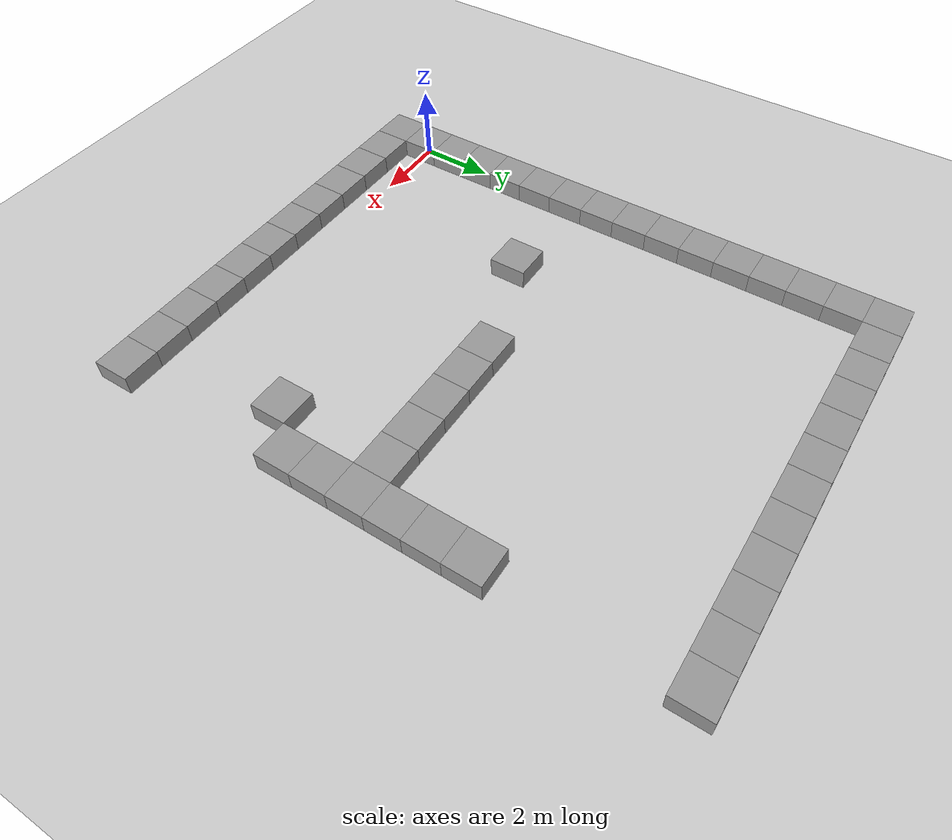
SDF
<sdf version="1.4">
 <world name="default">
  <model name="ground_plane">
   <static>1</static>
   <link name="link">
    <collision name="collision">
     <geometry><plane><normal>0 0 1</normal><size>100 100</size></plane></geometry>
     <surface><friction><ode><mu>100</mu><mu2>50</mu2></ode></friction></surface>
    </collision>
    <visual name="visual">
     <cast_shadows>0</cast_shadows>
     <geometry><plane><normal>0 0 1</normal><size>100 100</size></plane></geometry>
     <material>
      <script><uri>file://media/materials/scripts/gazebo.material</uri><name>Gazebo/Grey</name></script>
     </material>
    </visual>
    <velocity_decay><linear>0</linear><angular>0</angular></velocity_decay>
   </link>
  </model>
  <model name="unit_box_1">
   <pose>0 -1 0 0 -0 0</pose>
   <link name="link">
    <inertial>
     <mass>1</mass>
     <inertia><ixx>1</ixx><ixy>0</ixy><ixz>0</ixz><iyy>1</iyy><iyz>0</iyz><izz>1</izz></inertia>
    </inertial>
    <collision name="collision"><geometry><box><size>1 1 1</size></box></geometry></collision>
    <visual name="visual">
     <geometry><box><size>1 1 1</size></box></geometry>
     <material>
      <script><uri>file://media/materials/scripts/gazebo.material</uri><name>Gazebo/Grey</name></script>
     </material>
    </visual>
    <velocity_decay><linear>0</linear><angular>0</angular></velocity_decay>
   </link>
   <static>1</static>
  </model>
  <model name="unit_box_2">
   <pose>1 -1 0 0 -0 0</pose>
   <link name="link">
    <inertial>
     <mass>1</mass>
     <inertia><ixx>1</ixx><ixy>0</ixy><ixz>0</ixz><iyy>1</iyy><iyz>0</iyz><izz>1</izz></inertia>
    </inertial>
    <collision name="collision"><geometry><box><size>1 1 1</size></box></geometry></collision>
    <visual name="visual">
     <geometry><box><size>1 1 1</size></box></geometry>
     <material>
      <script><uri>file://media/materials/scripts/gazebo.material</uri><name>Gazebo/Grey</name></script>
     </material>
    </visual>
    <velocity_decay><linear>0</linear><angular>0</angular></velocity_decay>
   </link>
   <static>1</static>
  </model>
  <model name="unit_box_3">
   <pose>2 -1 0 0 -0 0</pose>
   <link name="link">
    <inertial>
     <mass>1</mass>
     <inertia><ixx>1</ixx><ixy>0</ixy><ixz>0</ixz><iyy>1</iyy><iyz>0</iyz><izz>1</izz></inertia>
    </inertial>
    <collision name="collision"><geometry><box><size>1 1 1</size></box></geometry></collision>
    <visual name="visual">
     <geometry><box><size>1 1 1</size></box></geometry>
     <material>
      <script><uri>file://media/materials/scripts/gazebo.material</uri><name>Gazebo/Grey</name></script>
     </material>
    </visual>
    <velocity_decay><linear>0</linear><angular>0</angular></velocity_decay>
   </link>
   <static>1</static>
  </model>
  <model name="unit_box_4">
   <pose>3 -1 0 0 -0 0</pose>
   <link name="link">
    <inertial>
     <mass>1</mass>
     <inertia><ixx>1</ixx><ixy>0</ixy><ixz>0</ixz><iyy>1</iyy><iyz>0</iyz><izz>1</izz></inertia>
    </inertial>
    <collision name="collision"><geometry><box><size>1 1 1</size></box></geometry></collision>
    <visual name="visual">
     <geometry><box><size>1 1 1</size></box></geometry>
     <material>
      <script><uri>file://media/materials/scripts/gazebo.material</uri><name>Gazebo/Grey</name></script>
     </material>
    </visual>
    <velocity_decay><linear>0</linear><angular>0</angular></velocity_decay>
   </link>
   <static>1</static>
  </model>
  <model name="unit_box_5">
   <pose>4 -1 0 0 -0 0</pose>
   <link name="link">
    <inertial>
     <mass>1</mass>
     <inertia><ixx>1</ixx><ixy>0</ixy><ixz>0</ixz><iyy>1</iyy><iyz>0</iyz><izz>1</izz></inertia>
    </inertial>
    <collision name="collision"><geometry><box><size>1 1 1</size></box></geometry></collision>
    <visual name="visual">
     <geometry><box><size>1 1 1</size></box></geometry>
     <material>
      <script><uri>file://media/materials/scripts/gazebo.material</uri><name>Gazebo/Grey</name></script>
     </material>
    </visual>
    <velocity_decay><linear>0</linear><angular>0</angular></velocity_decay>
   </link>
   <static>1</static>
  </model>
  <model name="unit_box_6">
   <pose>5 -1 0 0 -0 0</pose>
   <link name="link">
    <inertial>
     <mass>1</mass>
     <inertia><ixx>1</ixx><ixy>0</ixy><ixz>0</ixz><iyy>1</iyy><iyz>0</iyz><izz>1</izz></inertia>
    </inertial>
    <collision name="collision"><geometry><box><size>1 1 1</size></box></geometry></collision>
    <visual name="visual">
     <geometry><box><size>1 1 1</size></box></geometry>
     <material>
      <script><uri>file://media/materials/scripts/gazebo.material</uri><name>Gazebo/Grey</name></script>
     </material>
    </visual>
    <velocity_decay><linear>0</linear><angular>0</angular></velocity_decay>
   </link>
   <static>1</static>
  </model>
  <model name="unit_box_7">
   <pose>6 -1 0 0 -0 0</pose>
   <link name="link">
    <inertial>
     <mass>1</mass>
     <inertia><ixx>1</ixx><ixy>0</ixy><ixz>0</ixz><iyy>1</iyy><iyz>0</iyz><izz>1</izz></inertia>
    </inertial>
    <collision name="collision"><geometry><box><size>1 1 1</size></box></geometry></collision>
    <visual name="visual">
     <geometry><box><size>1 1 1</size></box></geometry>
     <material>
      <script><uri>file://media/materials/scripts/gazebo.material</uri><name>Gazebo/Grey</name></script>
     </material>
    </visual>
    <velocity_decay><linear>0</linear><angular>0</angular></velocity_decay>
   </link>
   <static>1</static>
  </model>
  <model name="unit_box_8">
   <pose>7 -1 0 0 -0 0</pose>
   <link name="link">
    <inertial>
     <mass>1</mass>
     <inertia><ixx>1</ixx><ixy>0</ixy><ixz>0</ixz><iyy>1</iyy><iyz>0</iyz><izz>1</izz></inertia>
    </inertial>
    <collision name="collision"><geometry><box><size>1 1 1</size></box></geometry></collision>
    <visual name="visual">
     <geometry><box><size>1 1 1</size></box></geometry>
     <material>
      <script><uri>file://media/materials/scripts/gazebo.material</uri><name>Gazebo/Grey</name></script>
     </material>
    </visual>
    <velocity_decay><linear>0</linear><angular>0</angular></velocity_decay>
   </link>
   <static>1</static>
  </model>
  <model name="unit_box_9">
   <pose>8 -1 0 0 -0 0</pose>
   <link name="link">
    <inertial>
     <mass>1</mass>
     <inertia><ixx>1</ixx><ixy>0</ixy><ixz>0</ixz><iyy>1</iyy><iyz>0</iyz><izz>1</izz></inertia>
    </inertial>
    <collision name="collision"><geometry><box><size>1 1 1</size></box></geometry></collision>
    <visual name="visual">
     <geometry><box><size>1 1 1</size></box></geometry>
     <material>
      <script><uri>file://media/materials/scripts/gazebo.material</uri><name>Gazebo/Grey</name></script>
     </material>
    </visual>
    <velocity_decay><linear>0</linear><angular>0</angular></velocity_decay>
   </link>
   <static>1</static>
  </model>
  <model name="unit_box_10">
   <pose>9 -1 0 0 -0 0</pose>
   <link name="link">
    <inertial>
     <mass>1</mass>
     <inertia><ixx>1</ixx><ixy>0</ixy><ixz>0</ixz><iyy>1</iyy><iyz>0</iyz><izz>1</izz></inertia>
    </inertial>
    <collision name="collision"><geometry><box><size>1 1 1</size></box></geometry></collision>
    <visual name="visual">
     <geometry><box><size>1 1 1</size></box></geometry>
     <material>
      <script><uri>file://media/materials/scripts/gazebo.material</uri><name>Gazebo/Grey</name></script>
     </material>
    </visual>
    <velocity_decay><linear>0</linear><angular>0</angular></velocity_decay>
   </link>
   <static>1</static>
  </model>
  <model name="unit_box_11">
   <pose>10 -1 0 0 -0 0</pose>
   <link name="link">
    <inertial>
     <mass>1</mass>
     <inertia><ixx>1</ixx><ixy>0</ixy><ixz>0</ixz><iyy>1</iyy><iyz>0</iyz><izz>1</izz></inertia>
    </inertial>
    <collision name="collision"><geometry><box><size>1 1 1</size></box></geometry></collision>
    <visual name="visual">
     <geometry><box><size>1 1 1</size></box></geometry>
     <material>
      <script><uri>file://media/materials/scripts/gazebo.material</uri><name>Gazebo/Grey</name></script>
     </material>
    </visual>
    <velocity_decay><linear>0</linear><angular>0</angular></velocity_decay>
   </link>
   <static>1</static>
  </model>
  <model name="unit_box_12">
   <pose>11 -1 0 0 -0 0</pose>
   <link name="link">
    <inertial>
     <mass>1</mass>
     <inertia><ixx>1</ixx><ixy>0</ixy><ixz>0</ixz><iyy>1</iyy><iyz>0</iyz><izz>1</izz></inertia>
    </inertial>
    <collision name="collision"><geometry><box><size>1 1 1</size></box></geometry></collision>
    <visual name="visual">
     <geometry><box><size>1 1 1</size></box></geometry>
     <material>
      <script><uri>file://media/materials/scripts/gazebo.material</uri><name>Gazebo/Grey</name></script>
     </material>
    </visual>
    <velocity_decay><linear>0</linear><angular>0</angular></velocity_decay>
   </link>
   <static>1</static>
  </model>
  <model name="unit_box_13">
   <link name="link">
    <inertial>
     <mass>1</mass>
     <inertia><ixx>1</ixx><ixy>0</ixy><ixz>0</ixz><iyy>1</iyy><iyz>0</iyz><izz>1</izz></inertia>
    </inertial>
    <collision name="collision"><geometry><box><size>1 1 1</size></box></geometry></collision>
    <visual name="visual">
     <geometry><box><size>1 1 1</size></box></geometry>
     <material>
      <script><uri>file://media/materials/scripts/gazebo.material</uri><name>Gazebo/Grey</name></script>
     </material>
    </visual>
    <velocity_decay><linear>0</linear><angular>0</angular></velocity_decay>
   </link>
   <static>1</static>
  </model>
  <model name="unit_box_14">
   <pose>0 1 0 0 -0 0</pose>
   <link name="link">
    <inertial>
     <mass>1</mass>
     <inertia><ixx>1</ixx><ixy>0</ixy><ixz>0</ixz><iyy>1</iyy><iyz>0</iyz><izz>1</izz></inertia>
    </inertial>
    <collision name="collision"><geometry><box><size>1 1 1</size></box></geometry></collision>
    <visual name="visual">
     <geometry><box><size>1 1 1</size></box></geometry>
     <material>
      <script><uri>file://media/materials/scripts/gazebo.material</uri><name>Gazebo/Grey</name></script>
     </material>
    </visual>
    <velocity_decay><linear>0</linear><angular>0</angular></velocity_decay>
   </link>
   <static>1</static>
  </model>
  <model name="unit_box_15">
   <pose>0 2 0 0 -0 0</pose>
   <link name="link">
    <inertial>
     <mass>1</mass>
     <inertia><ixx>1</ixx><ixy>0</ixy><ixz>0</ixz><iyy>1</iyy><iyz>0</iyz><izz>1</izz></inertia>
    </inertial>
    <collision name="collision"><geometry><box><size>1 1 1</size></box></geometry></collision>
    <visual name="visual">
     <geometry><box><size>1 1 1</size></box></geometry>
     <material>
      <script><uri>file://media/materials/scripts/gazebo.material</uri><name>Gazebo/Grey</name></script>
     </material>
    </visual>
    <velocity_decay><linear>0</linear><angular>0</angular></velocity_decay>
   </link>
   <static>1</static>
  </model>
  <model name="unit_box_16">
   <pose>0 3 0 0 -0 0</pose>
   <link name="link">
    <inertial>
     <mass>1</mass>
     <inertia><ixx>1</ixx><ixy>0</ixy><ixz>0</ixz><iyy>1</iyy><iyz>0</iyz><izz>1</izz></inertia>
    </inertial>
    <collision name="collision"><geometry><box><size>1 1 1</size></box></geometry></collision>
    <visual name="visual">
     <geometry><box><size>1 1 1</size></box></geometry>
     <material>
      <script><uri>file://media/materials/scripts/gazebo.material</uri><name>Gazebo/Grey</name></script>
     </material>
    </visual>
    <velocity_decay><linear>0</linear><angular>0</angular></velocity_decay>
   </link>
   <static>1</static>
  </model>
  <model name="unit_box_17">
   <pose>0 4 0 0 -0 0</pose>
   <link name="link">
    <inertial>
     <mass>1</mass>
     <inertia><ixx>1</ixx><ixy>0</ixy><ixz>0</ixz><iyy>1</iyy><iyz>0</iyz><izz>1</izz></inertia>
    </inertial>
    <collision name="collision"><geometry><box><size>1 1 1</size></box></geometry></collision>
    <visual name="visual">
     <geometry><box><size>1 1 1</size></box></geometry>
     <material>
      <script><uri>file://media/materials/scripts/gazebo.material</uri><name>Gazebo/Grey</name></script>
     </material>
    </visual>
    <velocity_decay><linear>0</linear><angular>0</angular></velocity_decay>
   </link>
   <static>1</static>
  </model>
  <model name="unit_box_18">
   <pose>0 5 0 0 -0 0</pose>
   <link name="link">
    <inertial>
     <mass>1</mass>
     <inertia><ixx>1</ixx><ixy>0</ixy><ixz>0</ixz><iyy>1</iyy><iyz>0</iyz><izz>1</izz></inertia>
    </inertial>
    <collision name="collision"><geometry><box><size>1 1 1</size></box></geometry></collision>
    <visual name="visual">
     <geometry><box><size>1 1 1</size></box></geometry>
     <material>
      <script><uri>file://media/materials/scripts/gazebo.material</uri><name>Gazebo/Grey</name></script>
     </material>
    </visual>
    <velocity_decay><linear>0</linear><angular>0</angular></velocity_decay>
   </link>
   <static>1</static>
  </model>
  <model name="unit_box_19">
   <pose>0 6 0 0 -0 0</pose>
   <link name="link">
    <inertial>
     <mass>1</mass>
     <inertia><ixx>1</ixx><ixy>0</ixy><ixz>0</ixz><iyy>1</iyy><iyz>0</iyz><izz>1</izz></inertia>
    </inertial>
    <collision name="collision"><geometry><box><size>1 1 1</size></box></geometry></collision>
    <visual name="visual">
     <geometry><box><size>1 1 1</size></box></geometry>
     <material>
      <script><uri>file://media/materials/scripts/gazebo.material</uri><name>Gazebo/Grey</name></script>
     </material>
    </visual>
    <velocity_decay><linear>0</linear><angular>0</angular></velocity_decay>
   </link>
   <static>1</static>
  </model>
  <model name="unit_box_20">
   <pose>0 7 0 0 -0 0</pose>
   <link name="link">
    <inertial>
     <mass>1</mass>
     <inertia><ixx>1</ixx><ixy>0</ixy><ixz>0</ixz><iyy>1</iyy><iyz>0</iyz><izz>1</izz></inertia>
    </inertial>
    <collision name="collision"><geometry><box><size>1 1 1</size></box></geometry></collision>
    <visual name="visual">
     <geometry><box><size>1 1 1</size></box></geometry>
     <material>
      <script><uri>file://media/materials/scripts/gazebo.material</uri><name>Gazebo/Grey</name></script>
     </material>
    </visual>
    <velocity_decay><linear>0</linear><angular>0</angular></velocity_decay>
   </link>
   <static>1</static>
  </model>
  <model name="unit_box_21">
   <pose>0 8 0 0 -0 0</pose>
   <link name="link">
    <inertial>
     <mass>1</mass>
     <inertia><ixx>1</ixx><ixy>0</ixy><ixz>0</ixz><iyy>1</iyy><iyz>0</iyz><izz>1</izz></inertia>
    </inertial>
    <collision name="collision"><geometry><box><size>1 1 1</size></box></geometry></collision>
    <visual name="visual">
     <geometry><box><size>1 1 1</size></box></geometry>
     <material>
      <script><uri>file://media/materials/scripts/gazebo.material</uri><name>Gazebo/Grey</name></script>
     </material>
    </visual>
    <velocity_decay><linear>0</linear><angular>0</angular></velocity_decay>
   </link>
   <static>1</static>
  </model>
  <model name="unit_box_22">
   <pose>0 9 0 0 -0 0</pose>
   <link name="link">
    <inertial>
     <mass>1</mass>
     <inertia><ixx>1</ixx><ixy>0</ixy><ixz>0</ixz><iyy>1</iyy><iyz>0</iyz><izz>1</izz></inertia>
    </inertial>
    <collision name="collision"><geometry><box><size>1 1 1</size></box></geometry></collision>
    <visual name="visual">
     <geometry><box><size>1 1 1</size></box></geometry>
     <material>
      <script><uri>file://media/materials/scripts/gazebo.material</uri><name>Gazebo/Grey</name></script>
     </material>
    </visual>
    <velocity_decay><linear>0</linear><angular>0</angular></velocity_decay>
   </link>
   <static>1</static>
  </model>
  <model name="unit_box_23">
   <pose>0 10 0 0 -0 0</pose>
   <link name="link">
    <inertial>
     <mass>1</mass>
     <inertia><ixx>1</ixx><ixy>0</ixy><ixz>0</ixz><iyy>1</iyy><iyz>0</iyz><izz>1</izz></inertia>
    </inertial>
    <collision name="collision"><geometry><box><size>1 1 1</size></box></geometry></collision>
    <visual name="visual">
     <geometry><box><size>1 1 1</size></box></geometry>
     <material>
      <script><uri>file://media/materials/scripts/gazebo.material</uri><name>Gazebo/Grey</name></script>
     </material>
    </visual>
    <velocity_decay><linear>0</linear><angular>0</angular></velocity_decay>
   </link>
   <static>1</static>
  </model>
  <model name="unit_box_24">
   <pose>0 11 0 0 -0 0</pose>
   <link name="link">
    <inertial>
     <mass>1</mass>
     <inertia><ixx>1</ixx><ixy>0</ixy><ixz>0</ixz><iyy>1</iyy><iyz>0</iyz><izz>1</izz></inertia>
    </inertial>
    <collision name="collision"><geometry><box><size>1 1 1</size></box></geometry></collision>
    <visual name="visual">
     <geometry><box><size>1 1 1</size></box></geometry>
     <material>
      <script><uri>file://media/materials/scripts/gazebo.material</uri><name>Gazebo/Grey</name></script>
     </material>
    </visual>
    <velocity_decay><linear>0</linear><angular>0</angular></velocity_decay>
   </link>
   <static>1</static>
  </model>
  <model name="unit_box_25">
   <pose>0 12 0 0 -0 0</pose>
   <link name="link">
    <inertial>
     <mass>1</mass>
     <inertia><ixx>1</ixx><ixy>0</ixy><ixz>0</ixz><iyy>1</iyy><iyz>0</iyz><izz>1</izz></inertia>
    </inertial>
    <collision name="collision"><geometry><box><size>1 1 1</size></box></geometry></collision>
    <visual name="visual">
     <geometry><box><size>1 1 1</size></box></geometry>
     <material>
      <script><uri>file://media/materials/scripts/gazebo.material</uri><name>Gazebo/Grey</name></script>
     </material>
    </visual>
    <velocity_decay><linear>0</linear><angular>0</angular></velocity_decay>
   </link>
   <static>1</static>
  </model>
  <model name="unit_box_26">
   <pose>0 13 0 0 -0 0</pose>
   <link name="link">
    <inertial>
     <mass>1</mass>
     <inertia><ixx>1</ixx><ixy>0</ixy><ixz>0</ixz><iyy>1</iyy><iyz>0</iyz><izz>1</izz></inertia>
    </inertial>
    <collision name="collision"><geometry><box><size>1 1 1</size></box></geometry></collision>
    <visual name="visual">
     <geometry><box><size>1 1 1</size></box></geometry>
     <material>
      <script><uri>file://media/materials/scripts/gazebo.material</uri><name>Gazebo/Grey</name></script>
     </material>
    </visual>
    <velocity_decay><linear>0</linear><angular>0</angular></velocity_decay>
   </link>
   <static>1</static>
  </model>
  <model name="unit_box_27">
   <pose>0 14 0 0 -0 0</pose>
   <link name="link">
    <inertial>
     <mass>1</mass>
     <inertia><ixx>1</ixx><ixy>0</ixy><ixz>0</ixz><iyy>1</iyy><iyz>0</iyz><izz>1</izz></inertia>
    </inertial>
    <collision name="collision"><geometry><box><size>1 1 1</size></box></geometry></collision>
    <visual name="visual">
     <geometry><box><size>1 1 1</size></box></geometry>
     <material>
      <script><uri>file://media/materials/scripts/gazebo.material</uri><name>Gazebo/Grey</name></script>
     </material>
    </visual>
    <velocity_decay><linear>0</linear><angular>0</angular></velocity_decay>
   </link>
   <static>1</static>
  </model>
  <model name="unit_box_28">
   <pose>1 14 0 0 -0 0</pose>
   <link name="link">
    <inertial>
     <mass>1</mass>
     <inertia><ixx>1</ixx><ixy>0</ixy><ixz>0</ixz><iyy>1</iyy><iyz>0</iyz><izz>1</izz></inertia>
    </inertial>
    <collision name="collision"><geometry><box><size>1 1 1</size></box></geometry></collision>
    <visual name="visual">
     <geometry><box><size>1 1 1</size></box></geometry>
     <material>
      <script><uri>file://media/materials/scripts/gazebo.material</uri><name>Gazebo/Grey</name></script>
     </material>
    </visual>
    <velocity_decay><linear>0</linear><angular>0</angular></velocity_decay>
   </link>
   <static>1</static>
  </model>
  <model name="unit_box_29">
   <pose>2 14 0 0 -0 0</pose>
   <link name="link">
    <inertial>
     <mass>1</mass>
     <inertia><ixx>1</ixx><ixy>0</ixy><ixz>0</ixz><iyy>1</iyy><iyz>0</iyz><izz>1</izz></inertia>
    </inertial>
    <collision name="collision"><geometry><box><size>1 1 1</size></box></geometry></collision>
    <visual name="visual">
     <geometry><box><size>1 1 1</size></box></geometry>
     <material>
      <script><uri>file://media/materials/scripts/gazebo.material</uri><name>Gazebo/Grey</name></script>
     </material>
    </visual>
    <velocity_decay><linear>0</linear><angular>0</angular></velocity_decay>
   </link>
   <static>1</static>
  </model>
  <model name="unit_box_30">
   <pose>3 14 0 0 -0 0</pose>
   <link name="link">
    <inertial>
     <mass>1</mass>
     <inertia><ixx>1</ixx><ixy>0</ixy><ixz>0</ixz><iyy>1</iyy><iyz>0</iyz><izz>1</izz></inertia>
    </inertial>
    <collision name="collision"><geometry><box><size>1 1 1</size></box></geometry></collision>
    <visual name="visual">
     <geometry><box><size>1 1 1</size></box></geometry>
     <material>
      <script><uri>file://media/materials/scripts/gazebo.material</uri><name>Gazebo/Grey</name></script>
     </material>
    </visual>
    <velocity_decay><linear>0</linear><angular>0</angular></velocity_decay>
   </link>
   <static>1</static>
  </model>
  <model name="unit_box_31">
   <pose>4 14 0 0 -0 0</pose>
   <link name="link">
    <inertial>
     <mass>1</mass>
     <inertia><ixx>1</ixx><ixy>0</ixy><ixz>0</ixz><iyy>1</iyy><iyz>0</iyz><izz>1</izz></inertia>
    </inertial>
    <collision name="collision"><geometry><box><size>1 1 1</size></box></geometry></collision>
    <visual name="visual">
     <geometry><box><size>1 1 1</size></box></geometry>
     <material>
      <script><uri>file://media/materials/scripts/gazebo.material</uri><name>Gazebo/Grey</name></script>
     </material>
    </visual>
    <velocity_decay><linear>0</linear><angular>0</angular></velocity_decay>
   </link>
   <static>1</static>
  </model>
  <model name="unit_box_32">
   <pose>5 14 0 0 -0 0</pose>
   <link name="link">
    <inertial>
     <mass>1</mass>
     <inertia><ixx>1</ixx><ixy>0</ixy><ixz>0</ixz><iyy>1</iyy><iyz>0</iyz><izz>1</izz></inertia>
    </inertial>
    <collision name="collision"><geometry><box><size>1 1 1</size></box></geometry></collision>
    <visual name="visual">
     <geometry><box><size>1 1 1</size></box></geometry>
     <material>
      <script><uri>file://media/materials/scripts/gazebo.material</uri><name>Gazebo/Grey</name></script>
     </material>
    </visual>
    <velocity_decay><linear>0</linear><angular>0</angular></velocity_decay>
   </link>
   <static>1</static>
  </model>
  <model name="unit_box_33">
   <pose>6 14 0 0 -0 0</pose>
   <link name="link">
    <inertial>
     <mass>1</mass>
     <inertia><ixx>1</ixx><ixy>0</ixy><ixz>0</ixz><iyy>1</iyy><iyz>0</iyz><izz>1</izz></inertia>
    </inertial>
    <collision name="collision"><geometry><box><size>1 1 1</size></box></geometry></collision>
    <visual name="visual">
     <geometry><box><size>1 1 1</size></box></geometry>
     <material>
      <script><uri>file://media/materials/scripts/gazebo.material</uri><name>Gazebo/Grey</name></script>
     </material>
    </visual>
    <velocity_decay><linear>0</linear><angular>0</angular></velocity_decay>
   </link>
   <static>1</static>
  </model>
  <model name="unit_box_34">
   <pose>7 14 0 0 -0 0</pose>
   <link name="link">
    <inertial>
     <mass>1</mass>
     <inertia><ixx>1</ixx><ixy>0</ixy><ixz>0</ixz><iyy>1</iyy><iyz>0</iyz><izz>1</izz></inertia>
    </inertial>
    <collision name="collision"><geometry><box><size>1 1 1</size></box></geometry></collision>
    <visual name="visual">
     <geometry><box><size>1 1 1</size></box></geometry>
     <material>
      <script><uri>file://media/materials/scripts/gazebo.material</uri><name>Gazebo/Grey</name></script>
     </material>
    </visual>
    <velocity_decay><linear>0</linear><angular>0</angular></velocity_decay>
   </link>
   <static>1</static>
  </model>
  <model name="unit_box_35">
   <pose>8 14 0 0 -0 0</pose>
   <link name="link">
    <inertial>
     <mass>1</mass>
     <inertia><ixx>1</ixx><ixy>0</ixy><ixz>0</ixz><iyy>1</iyy><iyz>0</iyz><izz>1</izz></inertia>
    </inertial>
    <collision name="collision"><geometry><box><size>1 1 1</size></box></geometry></collision>
    <visual name="visual">
     <geometry><box><size>1 1 1</size></box></geometry>
     <material>
      <script><uri>file://media/materials/scripts/gazebo.material</uri><name>Gazebo/Grey</name></script>
     </material>
    </visual>
    <velocity_decay><linear>0</linear><angular>0</angular></velocity_decay>
   </link>
   <static>1</static>
  </model>
  <model name="unit_box_36">
   <pose>9 14 0 0 -0 0</pose>
   <link name="link">
    <inertial>
     <mass>1</mass>
     <inertia><ixx>1</ixx><ixy>0</ixy><ixz>0</ixz><iyy>1</iyy><iyz>0</iyz><izz>1</izz></inertia>
    </inertial>
    <collision name="collision"><geometry><box><size>1 1 1</size></box></geometry></collision>
    <visual name="visual">
     <geometry><box><size>1 1 1</size></box></geometry>
     <material>
      <script><uri>file://media/materials/scripts/gazebo.material</uri><name>Gazebo/Grey</name></script>
     </material>
    </visual>
    <velocity_decay><linear>0</linear><angular>0</angular></velocity_decay>
   </link>
   <static>1</static>
  </model>
  <model name="unit_box_37">
   <pose>10 14 0 0 -0 0</pose>
   <link name="link">
    <inertial>
     <mass>1</mass>
     <inertia><ixx>1</ixx><ixy>0</ixy><ixz>0</ixz><iyy>1</iyy><iyz>0</iyz><izz>1</izz></inertia>
    </inertial>
    <collision name="collision"><geometry><box><size>1 1 1</size></box></geometry></collision>
    <visual name="visual">
     <geometry><box><size>1 1 1</size></box></geometry>
     <material>
      <script><uri>file://media/materials/scripts/gazebo.material</uri><name>Gazebo/Grey</name></script>
     </material>
    </visual>
    <velocity_decay><linear>0</linear><angular>0</angular></velocity_decay>
   </link>
   <static>1</static>
  </model>
  <model name="unit_box_38">
   <pose>11 14 0 0 -0 0</pose>
   <link name="link">
    <inertial>
     <mass>1</mass>
     <inertia><ixx>1</ixx><ixy>0</ixy><ixz>0</ixz><iyy>1</iyy><iyz>0</iyz><izz>1</izz></inertia>
    </inertial>
    <collision name="collision"><geometry><box><size>1 1 1</size></box></geometry></collision>
    <visual name="visual">
     <geometry><box><size>1 1 1</size></box></geometry>
     <material>
      <script><uri>file://media/materials/scripts/gazebo.material</uri><name>Gazebo/Grey</name></script>
     </material>
    </visual>
    <velocity_decay><linear>0</linear><angular>0</angular></velocity_decay>
   </link>
   <static>1</static>
  </model>
  <model name="unit_box_81">
   <pose>11 9 0 0 -0 0</pose>
   <link name="link">
    <inertial>
     <mass>1</mass>
     <inertia><ixx>1</ixx><ixy>0</ixy><ixz>0</ixz><iyy>1</iyy><iyz>0</iyz><izz>1</izz></inertia>
    </inertial>
    <collision name="collision"><geometry><box><size>1 1 1</size></box></geometry></collision>
    <visual name="visual">
     <geometry><box><size>1 1 1</size></box></geometry>
     <material>
      <script><uri>file://media/materials/scripts/gazebo.material</uri><name>Gazebo/Grey</name></script>
     </material>
    </visual>
    <velocity_decay><linear>0</linear><angular>0</angular></velocity_decay>
   </link>
   <static>1</static>
  </model>
  <model name="unit_box_82">
   <pose>11 8 0 0 -0 0</pose>
   <link name="link">
    <inertial>
     <mass>1</mass>
     <inertia><ixx>1</ixx><ixy>0</ixy><ixz>0</ixz><iyy>1</iyy><iyz>0</iyz><izz>1</izz></inertia>
    </inertial>
    <collision name="collision"><geometry><box><size>1 1 1</size></box></geometry></collision>
    <visual name="visual">
     <geometry><box><size>1 1 1</size></box></geometry>
     <material>
      <script><uri>file://media/materials/scripts/gazebo.material</uri><name>Gazebo/Grey</name></script>
     </material>
    </visual>
    <velocity_decay><linear>0</linear><angular>0</angular></velocity_decay>
   </link>
   <static>1</static>
  </model>
  <model name="unit_box_83">
   <pose>11 7 0 0 -0 0</pose>
   <link name="link">
    <inertial>
     <mass>1</mass>
     <inertia><ixx>1</ixx><ixy>0</ixy><ixz>0</ixz><iyy>1</iyy><iyz>0</iyz><izz>1</izz></inertia>
    </inertial>
    <collision name="collision"><geometry><box><size>1 1 1</size></box></geometry></collision>
    <visual name="visual">
     <geometry><box><size>1 1 1</size></box></geometry>
     <material>
      <script><uri>file://media/materials/scripts/gazebo.material</uri><name>Gazebo/Grey</name></script>
     </material>
    </visual>
    <velocity_decay><linear>0</linear><angular>0</angular></velocity_decay>
   </link>
   <static>1</static>
  </model>
  <model name="unit_box_84">
   <pose>11 6 0 0 -0 0</pose>
   <link name="link">
    <inertial>
     <mass>1</mass>
     <inertia><ixx>1</ixx><ixy>0</ixy><ixz>0</ixz><iyy>1</iyy><iyz>0</iyz><izz>1</izz></inertia>
    </inertial>
    <collision name="collision"><geometry><box><size>1 1 1</size></box></geometry></collision>
    <visual name="visual">
     <geometry><box><size>1 1 1</size></box></geometry>
     <material>
      <script><uri>file://media/materials/scripts/gazebo.material</uri><name>Gazebo/Grey</name></script>
     </material>
    </visual>
    <velocity_decay><linear>0</linear><angular>0</angular></velocity_decay>
   </link>
   <static>1</static>
  </model>
  <model name="unit_box_85">
   <pose>11 5 0 0 -0 0</pose>
   <link name="link">
    <inertial>
     <mass>1</mass>
     <inertia><ixx>1</ixx><ixy>0</ixy><ixz>0</ixz><iyy>1</iyy><iyz>0</iyz><izz>1</izz></inertia>
    </inertial>
    <collision name="collision"><geometry><box><size>1 1 1</size></box></geometry></collision>
    <visual name="visual">
     <geometry><box><size>1 1 1</size></box></geometry>
     <material>
      <script><uri>file://media/materials/scripts/gazebo.material</uri><name>Gazebo/Grey</name></script>
     </material>
    </visual>
    <velocity_decay><linear>0</linear><angular>0</angular></velocity_decay>
   </link>
   <static>1</static>
  </model>
  <model name="unit_box_86">
   <pose>11 4 0 0 -0 0</pose>
   <link name="link">
    <inertial>
     <mass>1</mass>
     <inertia><ixx>1</ixx><ixy>0</ixy><ixz>0</ixz><iyy>1</iyy><iyz>0</iyz><izz>1</izz></inertia>
    </inertial>
    <collision name="collision"><geometry><box><size>1 1 1</size></box></geometry></collision>
    <visual name="visual">
     <geometry><box><size>1 1 1</size></box></geometry>
     <material>
      <script><uri>file://media/materials/scripts/gazebo.material</uri><name>Gazebo/Grey</name></script>
     </material>
    </visual>
    <velocity_decay><linear>0</linear><angular>0</angular></velocity_decay>
   </link>
   <static>1</static>
  </model>
  <model name="unit_box_91">
   <pose>10 3 0 0 -0 0</pose>
   <link name="link">
    <inertial>
     <mass>1</mass>
     <inertia><ixx>1</ixx><ixy>0</ixy><ixz>0</ixz><iyy>1</iyy><iyz>0</iyz><izz>1</izz></inertia>
    </inertial>
    <collision name="collision"><geometry><box><size>1 1 1</size></box></geometry></collision>
    <visual name="visual">
     <geometry><box><size>1 1 1</size></box></geometry>
     <material>
      <script><uri>file://media/materials/scripts/gazebo.material</uri><name>Gazebo/Grey</name></script>
     </material>
    </visual>
    <velocity_decay><linear>0</linear><angular>0</angular></velocity_decay>
   </link>
   <static>1</static>
  </model>
  <model name="unit_box_92">
   <pose>10 6 0 0 -0 0</pose>
   <link name="link">
    <inertial>
     <mass>1</mass>
     <inertia><ixx>1</ixx><ixy>0</ixy><ixz>0</ixz><iyy>1</iyy><iyz>0</iyz><izz>1</izz></inertia>
    </inertial>
    <collision name="collision"><geometry><box><size>1 1 1</size></box></geometry></collision>
    <visual name="visual">
     <geometry><box><size>1 1 1</size></box></geometry>
     <material>
      <script><uri>file://media/materials/scripts/gazebo.material</uri><name>Gazebo/Grey</name></script>
     </material>
    </visual>
    <velocity_decay><linear>0</linear><angular>0</angular></velocity_decay>
   </link>
   <static>1</static>
  </model>
  <model name="unit_box_93">
   <pose>9 6 0 0 -0 0</pose>
   <link name="link">
    <inertial>
     <mass>1</mass>
     <inertia><ixx>1</ixx><ixy>0</ixy><ixz>0</ixz><iyy>1</iyy><iyz>0</iyz><izz>1</izz></inertia>
    </inertial>
    <collision name="collision"><geometry><box><size>1 1 1</size></box></geometry></collision>
    <visual name="visual">
     <geometry><box><size>1 1 1</size></box></geometry>
     <material>
      <script><uri>file://media/materials/scripts/gazebo.material</uri><name>Gazebo/Grey</name></script>
     </material>
    </visual>
    <velocity_decay><linear>0</linear><angular>0</angular></velocity_decay>
   </link>
   <static>1</static>
  </model>
  <model name="unit_box_94">
   <pose>8 6 0 0 -0 0</pose>
   <link name="link">
    <inertial>
     <mass>1</mass>
     <inertia><ixx>1</ixx><ixy>0</ixy><ixz>0</ixz><iyy>1</iyy><iyz>0</iyz><izz>1</izz></inertia>
    </inertial>
    <collision name="collision"><geometry><box><size>1 1 1</size></box></geometry></collision>
    <visual name="visual">
     <geometry><box><size>1 1 1</size></box></geometry>
     <material>
      <script><uri>file://media/materials/scripts/gazebo.material</uri><name>Gazebo/Grey</name></script>
     </material>
    </visual>
    <velocity_decay><linear>0</linear><angular>0</angular></velocity_decay>
   </link>
   <static>1</static>
  </model>
  <model name="unit_box_95">
   <pose>7 6 0 0 -0 0</pose>
   <link name="link">
    <inertial>
     <mass>1</mass>
     <inertia><ixx>1</ixx><ixy>0</ixy><ixz>0</ixz><iyy>1</iyy><iyz>0</iyz><izz>1</izz></inertia>
    </inertial>
    <collision name="collision"><geometry><box><size>1 1 1</size></box></geometry></collision>
    <visual name="visual">
     <geometry><box><size>1 1 1</size></box></geometry>
     <material>
      <script><uri>file://media/materials/scripts/gazebo.material</uri><name>Gazebo/Grey</name></script>
     </material>
    </visual>
    <velocity_decay><linear>0</linear><angular>0</angular></velocity_decay>
   </link>
   <static>1</static>
  </model>
  <model name="unit_box_96">
   <pose>6 6 0 0 -0 0</pose>
   <link name="link">
    <inertial>
     <mass>1</mass>
     <inertia><ixx>1</ixx><ixy>0</ixy><ixz>0</ixz><iyy>1</iyy><iyz>0</iyz><izz>1</izz></inertia>
    </inertial>
    <collision name="collision"><geometry><box><size>1 1 1</size></box></geometry></collision>
    <visual name="visual">
     <geometry><box><size>1 1 1</size></box></geometry>
     <material>
      <script><uri>file://media/materials/scripts/gazebo.material</uri><name>Gazebo/Grey</name></script>
     </material>
    </visual>
    <velocity_decay><linear>0</linear><angular>0</angular></velocity_decay>
   </link>
   <static>1</static>
  </model>
  <model name="unit_box_97">
   <pose>3 5 0 0 -0 0</pose>
   <link name="link">
    <inertial>
     <mass>1</mass>
     <inertia><ixx>1</ixx><ixy>0</ixy><ixz>0</ixz><iyy>1</iyy><iyz>0</iyz><izz>1</izz></inertia>
    </inertial>
    <collision name="collision"><geometry><box><size>1 1 1</size></box></geometry></collision>
    <visual name="visual">
     <geometry><box><size>1 1 1</size></box></geometry>
     <material>
      <script><uri>file://media/materials/scripts/gazebo.material</uri><name>Gazebo/Grey</name></script>
     </material>
    </visual>
    <velocity_decay><linear>0</linear><angular>0</angular></velocity_decay>
   </link>
   <static>1</static>
  </model>
 </world>
</sdf>
